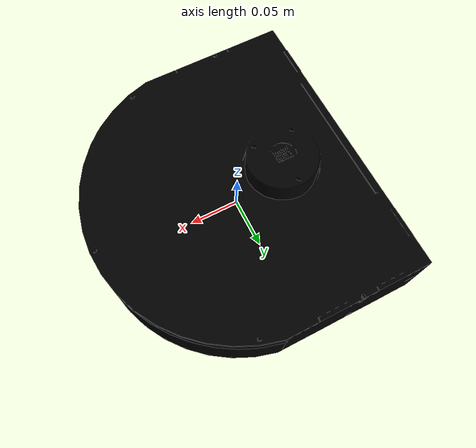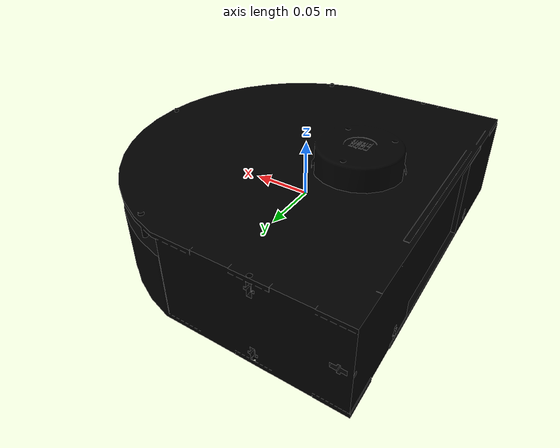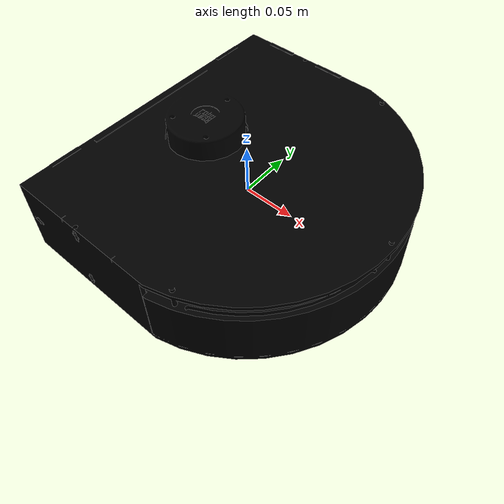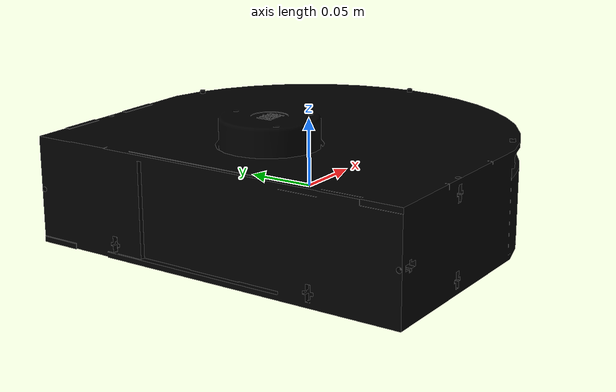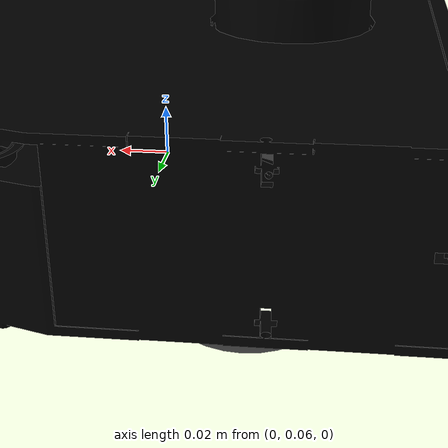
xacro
<?xml version="1.0"?>
<robot xmlns:xacro="http://www.ros.org/wiki/xacro"  name="dshape">

    <xacro:arg name="prefix" default="" />

    <xacro:include filename="dshape_core.xacro" />

    <xacro:include filename="ros2_control.xacro" />

    <xacro:diffbot_ros2_control name="DiffBot" prefix="$(arg prefix)" />

</robot>

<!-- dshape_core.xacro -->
<robot xmlns:xacro="http://www.ros.org/wiki/xacro">

  <link name="base_footprint"></link>
  <joint name="base_footprint_joint" type="fixed">
    <parent link="base_footprint"/>
    <child link="base_link"/>
    <origin xyz="0 0 0" rpy="0 0 0"/>
  </joint>

  <link
    name="base_link">
    <inertial>
      <origin
        xyz="-0.020088 -9.2937E-05 0.02136"
        rpy="0 0 0" />
      <mass
        value="2.4154" />
      <inertia
        ixx="0.0062254"
        ixy="3.3866E-07"
        ixz="0.00015974"
        iyy="0.0043358"
        iyz="-3.09E-06"
        izz="0.0097947" />
    </inertial>
    <visual>
      <origin
        xyz="0 0 0"
        rpy="0 0 0" />
      <geometry>
        <mesh
          filename="package://dshape_description/meshes/base_link.STL" />
      </geometry>
      <material
        name="">
        <color
          rgba="0 0 0 1" />
      </material>
    </visual>
    <collision>
      <origin
        xyz="0 0 0"
        rpy="0 0 0" />
      <geometry>
        <mesh
          filename="package://dshape_description/meshes/base_link.STL" />
      </geometry>
    </collision>
  </link>
  <link
    name="right_wheel">
    <inertial>
      <origin
        xyz="-6.6265E-06 -4.8357E-05 1.088E-05"
        rpy="0 0 0" />
      <mass
        value="0.017988" />
      <inertia
        ixx="1.232E-05"
        ixy="-1.1651E-10"
        ixz="-1.2027E-09"
        iyy="2.4408E-05"
        iyz="2.0648E-10"
        izz="1.2322E-05" />
    </inertial>
    <visual>
      <origin
        xyz="0 0 0"
        rpy="0 0 0" />
      <geometry>
        <mesh
          filename="package://dshape_description/meshes/right_wheel.STL" />
      </geometry>
      <material
        name="">
        <color
          rgba="0.29804 0.29804 0.29804 1" />
      </material>
    </visual>
    <collision>
      <origin
        xyz="0 0 0"
        rpy="0 0 0" />
      <geometry>
        <mesh
          filename="package://dshape_description/meshes/right_wheel.STL" />
      </geometry>
      <surface>
            <friction>
                <ode>
                    <mu>1</mu>
                    <mu2>1</mu2>
                    <fdir1>0 0 0</fdir1>
                    <slip1>0</slip1>
                    <slip2>0</slip2>
                </ode>
            </friction>
        </surface>
    </collision>
  </link>
  <joint
    name="right_wheel_joint"
    type="continuous">
    <origin
      xyz="-0.037981 -0.11991 -0.011849"
      rpy="0 0 0" />
    <parent
      link="base_link" />
    <child
      link="right_wheel" />
    <axis
      xyz="0 1 0" />
  </joint>
  <link
    name="left_wheel">
    <inertial>
      <origin
        xyz="6.6265E-06 4.8357E-05 1.088E-05"
        rpy="0 0 0" />
      <mass
        value="0.017988" />
      <inertia
        ixx="1.232E-05"
        ixy="-1.1651E-10"
        ixz="1.2027E-09"
        iyy="2.4408E-05"
        iyz="-2.0648E-10"
        izz="1.2322E-05" />
    </inertial>
    <visual>
      <origin
        xyz="0 0 0"
        rpy="0 0 0" />
      <geometry>
        <mesh
          filename="package://dshape_description/meshes/left_wheel.STL" />
      </geometry>
      <material
        name="">
        <color
          rgba="0.29804 0.29804 0.29804 1" />
      </material>
    </visual>
    <collision>
      <origin
        xyz="0 0 0"
        rpy="0 0 0" />
      <geometry>
        <mesh
          filename="package://dshape_description/meshes/left_wheel.STL" />
      </geometry>
      <surface>
            <friction>
                <ode>
                    <mu>1</mu>
                    <mu2>1</mu2>
                    <fdir1>0 0 0</fdir1>
                    <slip1>0</slip1>
                    <slip2>0</slip2>
                </ode>
            </friction>
        </surface>
    </collision>
  </link>
  <joint
    name="left_wheel_joint"
    type="continuous">
    <origin
      xyz="-0.03813 0.11892 -0.011747"
      rpy="0 0 0" />
    <parent
      link="base_link" />
    <child
      link="left_wheel" />
    <axis
      xyz="0 1 0" />
  </joint>

  <!-- lidar -->
  <link name="lidar"></link>
  <joint name="lidar_joint" type="fixed">
    <parent link="base_link"/>
    <child link="lidar"/>
    <origin xyz="0 0 0.02" rpy="0 0 0"/>
  </joint>

  <link name="camera"></link>
  <joint name="camera_joint" type="fixed">
    <parent link="base_link"/>
    <child link="camera"/>
    <origin xyz="0 0 0.03" rpy="0 0 0"/>
  </joint>

  <!-- Colour -->
  <gazebo reference="base_link">
    <material>Gazebo/Black</material>
  </gazebo>

  <gazebo reference="right_wheel">
    <material>Gazebo/Yellow</material>
    <mu1>1.0</mu1>
    <mu2>1.0</mu2>
  </gazebo>

   <gazebo reference="left_wheel">
    <material>Gazebo/Yellow</material>
    <mu1>1.0</mu1>
    <mu2>1.0</mu2>
  </gazebo>

   <gazebo reference="lidar">
    <material>Gazebo/White</material>
  </gazebo>
</robot>
